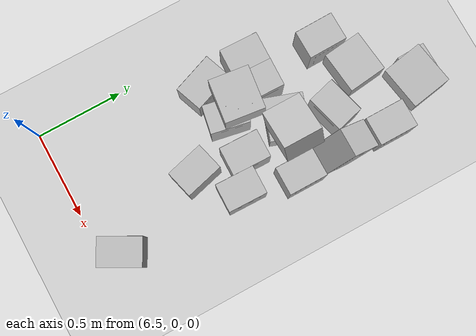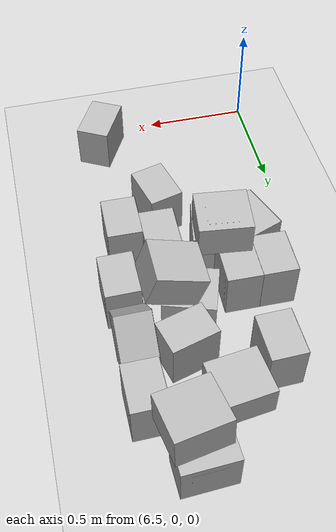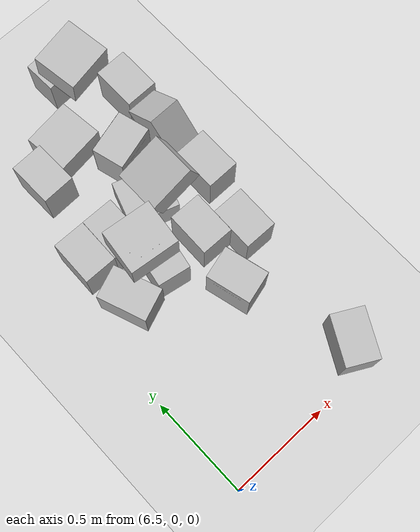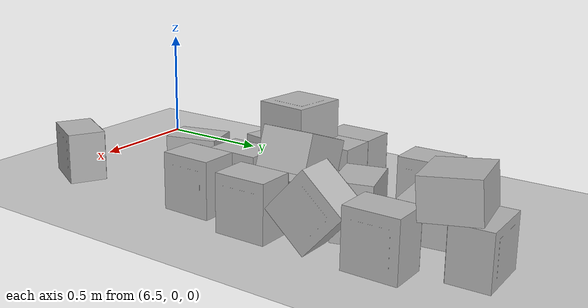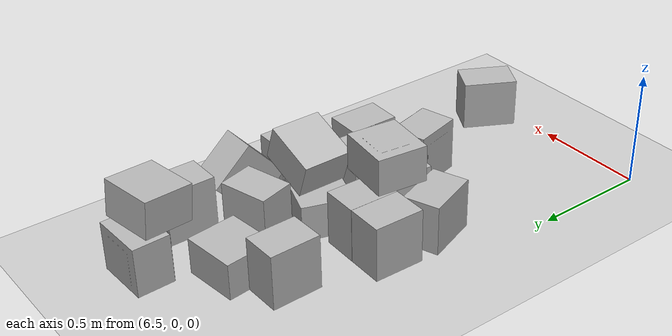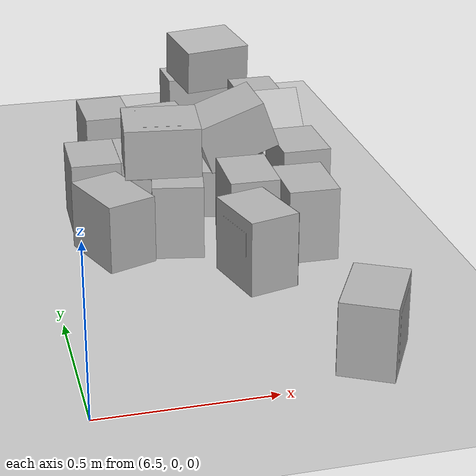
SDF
<sdf version="1.7">
 <world name="default">
  <model name="ground_plane">
   <static>1</static>
   <link name="link">
    <collision name="collision">
     <geometry><plane><normal>0 0 1</normal><size>100 100</size></plane></geometry>
     <surface><friction><ode><mu>100</mu><mu2>50</mu2></ode></friction></surface>
    </collision>
    <visual name="visual">
     <cast_shadows>0</cast_shadows>
     <geometry><plane><normal>0 0 1</normal><size>100 100</size></plane></geometry>
     <material>
      <script><uri>file://media/materials/scripts/gazebo.material</uri><name>Gazebo/Grey</name></script>
     </material>
    </visual>
   </link>
  </model>
  <model name="box">
   <link name="link">
    <inertial>
     <inertia>
      <ixx>0.00220983</ixx>
      <ixy>0</ixy>
      <ixz>0</ixz>
      <iyy>0.00128087</iyy>
      <iyz>0</iyz>
      <izz>0.00244903</izz>
     </inertia>
     <mass>0.01</mass>
    </inertial>
    <visual name="visual1">
     <cast_shadows>0</cast_shadows>
     <geometry><mesh><uri>model://box/meshes/box.dae</uri></mesh></geometry>
     <material>
      <shader type="pixel"><normal_map>__default__</normal_map></shader>
      <emissive>0 0 0 1</emissive>
     </material>
     <pose>0 0 -0.12 0 -0 0</pose>
    </visual>
    <collision name="collision_0">
     <geometry><box><size>0.16 0.22 0.24</size></box></geometry>
     <surface>
      <friction>
       <ode><mu>1</mu><mu2>1</mu2><fdir1>0 0 0</fdir1><slip1>0</slip1><slip2>0</slip2></ode>
       <torsional>
        <coefficient>1</coefficient>
        <patch_radius>0</patch_radius>
        <surface_radius>0</surface_radius>
        <use_patch_radius>1</use_patch_radius>
        <ode><slip>0</slip></ode>
       </torsional>
      </friction>
      <bounce><restitution_coefficient>0</restitution_coefficient><threshold>1e+06</threshold></bounce>
      <contact>
       <collide_without_contact>0</collide_without_contact>
       <collide_without_contact_bitmask>1</collide_without_contact_bitmask>
       <collide_bitmask>1</collide_bitmask>
       <ode>
        <soft_cfm>0</soft_cfm>
        <soft_erp>0.2</soft_erp>
        <kp>1e+13</kp>
        <kd>1</kd>
        <max_vel>0.01</max_vel>
        <min_depth>0</min_depth>
       </ode>
       <bullet>
        <split_impulse>1</split_impulse>
        <split_impulse_penetration_threshold>-0.01</split_impulse_penetration_threshold>
        <soft_cfm>0</soft_cfm>
        <soft_erp>0.2</soft_erp>
        <kp>1e+13</kp>
        <kd>1</kd>
       </bullet>
      </contact>
     </surface>
    </collision>
   </link>
   <static>0</static>
   <pose>6.6949 1.18742 0.119988 -1.3e-05 -4e-06 -0.023776</pose>
  </model>
  <model name="box_0">
   <link name="link">
    <inertial>
     <inertia>
      <ixx>0.00220983</ixx>
      <ixy>0</ixy>
      <ixz>0</ixz>
      <iyy>0.00128087</iyy>
      <iyz>0</iyz>
      <izz>0.00244903</izz>
     </inertia>
     <mass>0.01</mass>
    </inertial>
    <visual name="visual1">
     <cast_shadows>0</cast_shadows>
     <geometry><mesh><uri>model://box/meshes/box.dae</uri></mesh></geometry>
     <material>
      <shader type="pixel"><normal_map>__default__</normal_map></shader>
      <emissive>0 0 0 1</emissive>
     </material>
     <pose>0 0 -0.12 0 -0 0</pose>
    </visual>
    <collision name="collision_0">
     <geometry><box><size>0.16 0.22 0.24</size></box></geometry>
     <surface>
      <friction>
       <ode><mu>1</mu><mu2>1</mu2><fdir1>0 0 0</fdir1><slip1>0</slip1><slip2>0</slip2></ode>
       <torsional>
        <coefficient>1</coefficient>
        <patch_radius>0</patch_radius>
        <surface_radius>0</surface_radius>
        <use_patch_radius>1</use_patch_radius>
        <ode><slip>0</slip></ode>
       </torsional>
      </friction>
      <bounce><restitution_coefficient>0</restitution_coefficient><threshold>1e+06</threshold></bounce>
      <contact>
       <collide_without_contact>0</collide_without_contact>
       <collide_without_contact_bitmask>1</collide_without_contact_bitmask>
       <collide_bitmask>1</collide_bitmask>
       <ode>
        <soft_cfm>0</soft_cfm>
        <soft_erp>0.2</soft_erp>
        <kp>1e+13</kp>
        <kd>1</kd>
        <max_vel>0.01</max_vel>
        <min_depth>0</min_depth>
       </ode>
       <bullet>
        <split_impulse>1</split_impulse>
        <split_impulse_penetration_threshold>-0.01</split_impulse_penetration_threshold>
        <soft_cfm>0</soft_cfm>
        <soft_erp>0.2</soft_erp>
        <kp>1e+13</kp>
        <kd>1</kd>
       </bullet>
      </contact>
     </surface>
    </collision>
   </link>
   <static>0</static>
   <pose>7.1612 1.4756 0.12 0 0 -1.30545</pose>
  </model>
  <model name="box_1">
   <link name="link">
    <inertial>
     <inertia>
      <ixx>0.00220983</ixx>
      <ixy>0</ixy>
      <ixz>0</ixz>
      <iyy>0.00128087</iyy>
      <iyz>0</iyz>
      <izz>0.00244903</izz>
     </inertia>
     <mass>0.01</mass>
    </inertial>
    <visual name="visual1">
     <cast_shadows>0</cast_shadows>
     <geometry><mesh><uri>model://box/meshes/box.dae</uri></mesh></geometry>
     <material>
      <shader type="pixel"><normal_map>__default__</normal_map></shader>
      <emissive>0 0 0 1</emissive>
     </material>
     <pose>0 0 -0.12 0 -0 0</pose>
    </visual>
    <collision name="collision_0">
     <geometry><box><size>0.16 0.22 0.24</size></box></geometry>
     <surface>
      <friction>
       <ode><mu>1</mu><mu2>1</mu2><fdir1>0 0 0</fdir1><slip1>0</slip1><slip2>0</slip2></ode>
       <torsional>
        <coefficient>1</coefficient>
        <patch_radius>0</patch_radius>
        <surface_radius>0</surface_radius>
        <use_patch_radius>1</use_patch_radius>
        <ode><slip>0</slip></ode>
       </torsional>
      </friction>
      <bounce><restitution_coefficient>0</restitution_coefficient><threshold>1e+06</threshold></bounce>
      <contact>
       <collide_without_contact>0</collide_without_contact>
       <collide_without_contact_bitmask>1</collide_without_contact_bitmask>
       <collide_bitmask>1</collide_bitmask>
       <ode>
        <soft_cfm>0</soft_cfm>
        <soft_erp>0.2</soft_erp>
        <kp>1e+13</kp>
        <kd>1</kd>
        <max_vel>0.01</max_vel>
        <min_depth>0</min_depth>
       </ode>
       <bullet>
        <split_impulse>1</split_impulse>
        <split_impulse_penetration_threshold>-0.01</split_impulse_penetration_threshold>
        <soft_cfm>0</soft_cfm>
        <soft_erp>0.2</soft_erp>
        <kp>1e+13</kp>
        <kd>1</kd>
       </bullet>
      </contact>
     </surface>
    </collision>
   </link>
   <static>0</static>
   <pose>7.38401 1.68891 0.1183 -1.1e-05 -7e-05 0.00035</pose>
  </model>
  <model name="box_2">
   <link name="link">
    <inertial>
     <inertia>
      <ixx>0.00220983</ixx>
      <ixy>0</ixy>
      <ixz>0</ixz>
      <iyy>0.00128087</iyy>
      <iyz>0</iyz>
      <izz>0.00244903</izz>
     </inertia>
     <mass>0.01</mass>
    </inertial>
    <visual name="visual1">
     <cast_shadows>0</cast_shadows>
     <geometry><mesh><uri>model://box/meshes/box.dae</uri></mesh></geometry>
     <material>
      <shader type="pixel"><normal_map>__default__</normal_map></shader>
      <emissive>0 0 0 1</emissive>
     </material>
     <pose>0 0 -0.12 0 -0 0</pose>
    </visual>
    <collision name="collision_0">
     <geometry><box><size>0.16 0.22 0.24</size></box></geometry>
     <surface>
      <friction>
       <ode><mu>1</mu><mu2>1</mu2><fdir1>0 0 0</fdir1><slip1>0</slip1><slip2>0</slip2></ode>
       <torsional>
        <coefficient>1</coefficient>
        <patch_radius>0</patch_radius>
        <surface_radius>0</surface_radius>
        <use_patch_radius>1</use_patch_radius>
        <ode><slip>0</slip></ode>
       </torsional>
      </friction>
      <bounce><restitution_coefficient>0</restitution_coefficient><threshold>1e+06</threshold></bounce>
      <contact>
       <collide_without_contact>0</collide_without_contact>
       <collide_without_contact_bitmask>1</collide_without_contact_bitmask>
       <collide_bitmask>1</collide_bitmask>
       <ode>
        <soft_cfm>0</soft_cfm>
        <soft_erp>0.2</soft_erp>
        <kp>1e+13</kp>
        <kd>1</kd>
        <max_vel>0.01</max_vel>
        <min_depth>0</min_depth>
       </ode>
       <bullet>
        <split_impulse>1</split_impulse>
        <split_impulse_penetration_threshold>-0.01</split_impulse_penetration_threshold>
        <soft_cfm>0</soft_cfm>
        <soft_erp>0.2</soft_erp>
        <kp>1e+13</kp>
        <kd>1</kd>
       </bullet>
      </contact>
     </surface>
    </collision>
   </link>
   <static>0</static>
   <pose>6.99735 1.70085 0.08 2.78611 1.57079 2.90216</pose>
  </model>
  <model name="box_3">
   <link name="link">
    <inertial>
     <inertia>
      <ixx>0.00220983</ixx>
      <ixy>0</ixy>
      <ixz>0</ixz>
      <iyy>0.00128087</iyy>
      <iyz>0</iyz>
      <izz>0.00244903</izz>
     </inertia>
     <mass>0.01</mass>
    </inertial>
    <visual name="visual1">
     <cast_shadows>0</cast_shadows>
     <geometry><mesh><uri>model://box/meshes/box.dae</uri></mesh></geometry>
     <material>
      <shader type="pixel"><normal_map>__default__</normal_map></shader>
      <emissive>0 0 0 1</emissive>
     </material>
     <pose>0 0 -0.12 0 -0 0</pose>
    </visual>
    <collision name="collision_0">
     <geometry><box><size>0.16 0.22 0.24</size></box></geometry>
     <surface>
      <friction>
       <ode><mu>1</mu><mu2>1</mu2><fdir1>0 0 0</fdir1><slip1>0</slip1><slip2>0</slip2></ode>
       <torsional>
        <coefficient>1</coefficient>
        <patch_radius>0</patch_radius>
        <surface_radius>0</surface_radius>
        <use_patch_radius>1</use_patch_radius>
        <ode><slip>0</slip></ode>
       </torsional>
      </friction>
      <bounce><restitution_coefficient>0</restitution_coefficient><threshold>1e+06</threshold></bounce>
      <contact>
       <collide_without_contact>0</collide_without_contact>
       <collide_without_contact_bitmask>1</collide_without_contact_bitmask>
       <collide_bitmask>1</collide_bitmask>
       <ode>
        <soft_cfm>0</soft_cfm>
        <soft_erp>0.2</soft_erp>
        <kp>1e+13</kp>
        <kd>1</kd>
        <max_vel>0.01</max_vel>
        <min_depth>0</min_depth>
       </ode>
       <bullet>
        <split_impulse>1</split_impulse>
        <split_impulse_penetration_threshold>-0.01</split_impulse_penetration_threshold>
        <soft_cfm>0</soft_cfm>
        <soft_erp>0.2</soft_erp>
        <kp>1e+13</kp>
        <kd>1</kd>
       </bullet>
      </contact>
     </surface>
    </collision>
   </link>
   <static>0</static>
   <pose>7.16624 1.21663 0.27562 -0.000355 1.22733 -0.000252</pose>
  </model>
  <model name="box_5">
   <link name="link">
    <inertial>
     <inertia>
      <ixx>0.00220983</ixx>
      <ixy>0</ixy>
      <ixz>0</ixz>
      <iyy>0.00128087</iyy>
      <iyz>0</iyz>
      <izz>0.00244903</izz>
     </inertia>
     <mass>0.01</mass>
    </inertial>
    <visual name="visual1">
     <cast_shadows>0</cast_shadows>
     <geometry><mesh><uri>model://box/meshes/box.dae</uri></mesh></geometry>
     <material>
      <shader type="pixel"><normal_map>__default__</normal_map></shader>
      <emissive>0 0 0 1</emissive>
     </material>
     <pose>0 0 -0.12 0 -0 0</pose>
    </visual>
    <collision name="collision_0">
     <geometry><box><size>0.16 0.22 0.24</size></box></geometry>
     <surface>
      <friction>
       <ode><mu>1</mu><mu2>1</mu2><fdir1>0 0 0</fdir1><slip1>0</slip1><slip2>0</slip2></ode>
       <torsional>
        <coefficient>1</coefficient>
        <patch_radius>0</patch_radius>
        <surface_radius>0</surface_radius>
        <use_patch_radius>1</use_patch_radius>
        <ode><slip>0</slip></ode>
       </torsional>
      </friction>
      <bounce><restitution_coefficient>0</restitution_coefficient><threshold>1e+06</threshold></bounce>
      <contact>
       <collide_without_contact>0</collide_without_contact>
       <collide_without_contact_bitmask>1</collide_without_contact_bitmask>
       <collide_bitmask>1</collide_bitmask>
       <ode>
        <soft_cfm>0</soft_cfm>
        <soft_erp>0.2</soft_erp>
        <kp>1e+13</kp>
        <kd>1</kd>
        <max_vel>0.01</max_vel>
        <min_depth>0</min_depth>
       </ode>
       <bullet>
        <split_impulse>1</split_impulse>
        <split_impulse_penetration_threshold>-0.01</split_impulse_penetration_threshold>
        <soft_cfm>0</soft_cfm>
        <soft_erp>0.2</soft_erp>
        <kp>1e+13</kp>
        <kd>1</kd>
       </bullet>
      </contact>
     </surface>
    </collision>
   </link>
   <static>0</static>
   <pose>7.31334 0.826569 0.12 0 -0 -0.019346</pose>
  </model>
  <model name="box_8">
   <link name="link">
    <inertial>
     <inertia>
      <ixx>0.00220983</ixx>
      <ixy>0</ixy>
      <ixz>0</ixz>
      <iyy>0.00128087</iyy>
      <iyz>0</iyz>
      <izz>0.00244903</izz>
     </inertia>
     <mass>0.01</mass>
    </inertial>
    <visual name="visual1">
     <cast_shadows>0</cast_shadows>
     <geometry><mesh><uri>model://box/meshes/box.dae</uri></mesh></geometry>
     <material>
      <shader type="pixel"><normal_map>__default__</normal_map></shader>
      <emissive>0 0 0 1</emissive>
     </material>
     <pose>0 0 -0.12 0 -0 0</pose>
    </visual>
    <collision name="collision_0">
     <geometry><box><size>0.16 0.22 0.24</size></box></geometry>
     <surface>
      <friction>
       <ode><mu>1</mu><mu2>1</mu2><fdir1>0 0 0</fdir1><slip1>0</slip1><slip2>0</slip2></ode>
       <torsional>
        <coefficient>1</coefficient>
        <patch_radius>0</patch_radius>
        <surface_radius>0</surface_radius>
        <use_patch_radius>1</use_patch_radius>
        <ode><slip>0</slip></ode>
       </torsional>
      </friction>
      <bounce><restitution_coefficient>0</restitution_coefficient><threshold>1e+06</threshold></bounce>
      <contact>
       <collide_without_contact>0</collide_without_contact>
       <collide_without_contact_bitmask>1</collide_without_contact_bitmask>
       <collide_bitmask>1</collide_bitmask>
       <ode>
        <soft_cfm>0</soft_cfm>
        <soft_erp>0.2</soft_erp>
        <kp>1e+13</kp>
        <kd>1</kd>
        <max_vel>0.01</max_vel>
        <min_depth>0</min_depth>
       </ode>
       <bullet>
        <split_impulse>1</split_impulse>
        <split_impulse_penetration_threshold>-0.01</split_impulse_penetration_threshold>
        <soft_cfm>0</soft_cfm>
        <soft_erp>0.2</soft_erp>
        <kp>1e+13</kp>
        <kd>1</kd>
       </bullet>
      </contact>
     </surface>
    </collision>
   </link>
   <static>0</static>
   <pose>6.89395 1.03089 0.319892 1.472 -1.56933 -1.59269</pose>
  </model>
  <model name="box_9">
   <link name="link">
    <inertial>
     <inertia>
      <ixx>0.00220983</ixx>
      <ixy>0</ixy>
      <ixz>0</ixz>
      <iyy>0.00128087</iyy>
      <iyz>0</iyz>
      <izz>0.00244903</izz>
     </inertia>
     <mass>0.01</mass>
    </inertial>
    <visual name="visual1">
     <cast_shadows>0</cast_shadows>
     <geometry><mesh><uri>model://box/meshes/box.dae</uri></mesh></geometry>
     <material>
      <shader type="pixel"><normal_map>__default__</normal_map></shader>
      <emissive>0 0 0 1</emissive>
     </material>
     <pose>0 0 -0.12 0 -0 0</pose>
    </visual>
    <collision name="collision_0">
     <geometry><box><size>0.16 0.22 0.24</size></box></geometry>
     <surface>
      <friction>
       <ode><mu>1</mu><mu2>1</mu2><fdir1>0 0 0</fdir1><slip1>0</slip1><slip2>0</slip2></ode>
       <torsional>
        <coefficient>1</coefficient>
        <patch_radius>0</patch_radius>
        <surface_radius>0</surface_radius>
        <use_patch_radius>1</use_patch_radius>
        <ode><slip>0</slip></ode>
       </torsional>
      </friction>
      <bounce><restitution_coefficient>0</restitution_coefficient><threshold>1e+06</threshold></bounce>
      <contact>
       <collide_without_contact>0</collide_without_contact>
       <collide_without_contact_bitmask>1</collide_without_contact_bitmask>
       <collide_bitmask>1</collide_bitmask>
       <ode>
        <soft_cfm>0</soft_cfm>
        <soft_erp>0.2</soft_erp>
        <kp>1e+13</kp>
        <kd>1</kd>
        <max_vel>0.01</max_vel>
        <min_depth>0</min_depth>
       </ode>
       <bullet>
        <split_impulse>1</split_impulse>
        <split_impulse_penetration_threshold>-0.01</split_impulse_penetration_threshold>
        <soft_cfm>0</soft_cfm>
        <soft_erp>0.2</soft_erp>
        <kp>1e+13</kp>
        <kd>1</kd>
       </bullet>
      </contact>
     </surface>
    </collision>
   </link>
   <static>0</static>
   <pose>7.15536 0.936115 0.119991 0 -0 -0.021545</pose>
  </model>
  <model name="box_11">
   <link name="link">
    <inertial>
     <inertia>
      <ixx>0.00220983</ixx>
      <ixy>0</ixy>
      <ixz>0</ixz>
      <iyy>0.00128087</iyy>
      <iyz>0</iyz>
      <izz>0.00244903</izz>
     </inertia>
     <mass>0.01</mass>
    </inertial>
    <visual name="visual1">
     <cast_shadows>0</cast_shadows>
     <geometry><mesh><uri>model://box/meshes/box.dae</uri></mesh></geometry>
     <material>
      <shader type="pixel"><normal_map>__default__</normal_map></shader>
      <emissive>0 0 0 1</emissive>
     </material>
     <pose>0 0 -0.12 0 -0 0</pose>
    </visual>
    <collision name="collision_0">
     <geometry><box><size>0.16 0.22 0.24</size></box></geometry>
     <surface>
      <friction>
       <ode><mu>1</mu><mu2>1</mu2><fdir1>0 0 0</fdir1><slip1>0</slip1><slip2>0</slip2></ode>
       <torsional>
        <coefficient>1</coefficient>
        <patch_radius>0</patch_radius>
        <surface_radius>0</surface_radius>
        <use_patch_radius>1</use_patch_radius>
        <ode><slip>0</slip></ode>
       </torsional>
      </friction>
      <bounce><restitution_coefficient>0</restitution_coefficient><threshold>1e+06</threshold></bounce>
      <contact>
       <collide_without_contact>0</collide_without_contact>
       <collide_without_contact_bitmask>1</collide_without_contact_bitmask>
       <collide_bitmask>1</collide_bitmask>
       <ode>
        <soft_cfm>0</soft_cfm>
        <soft_erp>0.2</soft_erp>
        <kp>1e+13</kp>
        <kd>1</kd>
        <max_vel>0.01</max_vel>
        <min_depth>0</min_depth>
       </ode>
       <bullet>
        <split_impulse>1</split_impulse>
        <split_impulse_penetration_threshold>-0.01</split_impulse_penetration_threshold>
        <soft_cfm>0</soft_cfm>
        <soft_erp>0.2</soft_erp>
        <kp>1e+13</kp>
        <kd>1</kd>
       </bullet>
      </contact>
     </surface>
    </collision>
   </link>
   <static>0</static>
   <pose>7.37516 1.41711 0.162753 -0.725454 2.5e-05 6.9e-05</pose>
  </model>
  <model name="box_13">
   <link name="link">
    <inertial>
     <inertia>
      <ixx>0.00220983</ixx>
      <ixy>0</ixy>
      <ixz>0</ixz>
      <iyy>0.00128087</iyy>
      <iyz>0</iyz>
      <izz>0.00244903</izz>
     </inertia>
     <mass>0.01</mass>
    </inertial>
    <visual name="visual1">
     <cast_shadows>0</cast_shadows>
     <geometry><mesh><uri>model://box/meshes/box.dae</uri></mesh></geometry>
     <material>
      <shader type="pixel"><normal_map>__default__</normal_map></shader>
      <emissive>0 0 0 1</emissive>
     </material>
     <pose>0 0 -0.12 0 -0 0</pose>
    </visual>
    <collision name="collision_0">
     <geometry><box><size>0.16 0.22 0.24</size></box></geometry>
     <surface>
      <friction>
       <ode><mu>1</mu><mu2>1</mu2><fdir1>0 0 0</fdir1><slip1>0</slip1><slip2>0</slip2></ode>
       <torsional>
        <coefficient>1</coefficient>
        <patch_radius>0</patch_radius>
        <surface_radius>0</surface_radius>
        <use_patch_radius>1</use_patch_radius>
        <ode><slip>0</slip></ode>
       </torsional>
      </friction>
      <bounce><restitution_coefficient>0</restitution_coefficient><threshold>1e+06</threshold></bounce>
      <contact>
       <collide_without_contact>0</collide_without_contact>
       <collide_without_contact_bitmask>1</collide_without_contact_bitmask>
       <collide_bitmask>1</collide_bitmask>
       <ode>
        <soft_cfm>0</soft_cfm>
        <soft_erp>0.2</soft_erp>
        <kp>1e+13</kp>
        <kd>1</kd>
        <max_vel>0.01</max_vel>
        <min_depth>0</min_depth>
       </ode>
       <bullet>
        <split_impulse>1</split_impulse>
        <split_impulse_penetration_threshold>-0.01</split_impulse_penetration_threshold>
        <soft_cfm>0</soft_cfm>
        <soft_erp>0.2</soft_erp>
        <kp>1e+13</kp>
        <kd>1</kd>
       </bullet>
      </contact>
     </surface>
    </collision>
   </link>
   <static>0</static>
   <pose>7.1118 0.659513 0.119999 3.14159 5e-06 -2.88678</pose>
  </model>
  <model name="box_15">
   <link name="link">
    <inertial>
     <inertia>
      <ixx>0.00220983</ixx>
      <ixy>0</ixy>
      <ixz>0</ixz>
      <iyy>0.00128087</iyy>
      <iyz>0</iyz>
      <izz>0.00244903</izz>
     </inertia>
     <mass>0.01</mass>
    </inertial>
    <visual name="visual1">
     <cast_shadows>0</cast_shadows>
     <geometry><mesh><uri>model://box/meshes/box.dae</uri></mesh></geometry>
     <material>
      <shader type="pixel"><normal_map>__default__</normal_map></shader>
      <emissive>0 0 0 1</emissive>
     </material>
     <pose>0 0 -0.12 0 -0 0</pose>
    </visual>
    <collision name="collision_0">
     <geometry><box><size>0.16 0.22 0.24</size></box></geometry>
     <surface>
      <friction>
       <ode><mu>1</mu><mu2>1</mu2><fdir1>0 0 0</fdir1><slip1>0</slip1><slip2>0</slip2></ode>
       <torsional>
        <coefficient>1</coefficient>
        <patch_radius>0</patch_radius>
        <surface_radius>0</surface_radius>
        <use_patch_radius>1</use_patch_radius>
        <ode><slip>0</slip></ode>
       </torsional>
      </friction>
      <bounce><restitution_coefficient>0</restitution_coefficient><threshold>1e+06</threshold></bounce>
      <contact>
       <collide_without_contact>0</collide_without_contact>
       <collide_without_contact_bitmask>1</collide_without_contact_bitmask>
       <collide_bitmask>1</collide_bitmask>
       <ode>
        <soft_cfm>0</soft_cfm>
        <soft_erp>0.2</soft_erp>
        <kp>1e+13</kp>
        <kd>1</kd>
        <max_vel>0.01</max_vel>
        <min_depth>0</min_depth>
       </ode>
       <bullet>
        <split_impulse>1</split_impulse>
        <split_impulse_penetration_threshold>-0.01</split_impulse_penetration_threshold>
        <soft_cfm>0</soft_cfm>
        <soft_erp>0.2</soft_erp>
        <kp>1e+13</kp>
        <kd>1</kd>
       </bullet>
      </contact>
     </surface>
    </collision>
   </link>
   <static>0</static>
   <pose>7.21538 1.98139 0.104415 1.5713 -0.00122 1.60609</pose>
  </model>
  <model name="box_19">
   <link name="link">
    <inertial>
     <inertia>
      <ixx>0.00220983</ixx>
      <ixy>0</ixy>
      <ixz>0</ixz>
      <iyy>0.00128087</iyy>
      <iyz>0</iyz>
      <izz>0.00244903</izz>
     </inertia>
     <mass>0.01</mass>
    </inertial>
    <visual name="visual1">
     <cast_shadows>0</cast_shadows>
     <geometry><mesh><uri>model://box/meshes/box.dae</uri></mesh></geometry>
     <material>
      <shader type="pixel"><normal_map>__default__</normal_map></shader>
      <emissive>0 0 0 1</emissive>
     </material>
     <pose>0 0 -0.12 0 -0 0</pose>
    </visual>
    <collision name="collision_0">
     <geometry><box><size>0.16 0.22 0.24</size></box></geometry>
     <surface>
      <friction>
       <ode><mu>1</mu><mu2>1</mu2><fdir1>0 0 0</fdir1><slip1>0</slip1><slip2>0</slip2></ode>
       <torsional>
        <coefficient>1</coefficient>
        <patch_radius>0</patch_radius>
        <surface_radius>0</surface_radius>
        <use_patch_radius>1</use_patch_radius>
        <ode><slip>0</slip></ode>
       </torsional>
      </friction>
      <bounce><restitution_coefficient>0</restitution_coefficient><threshold>1e+06</threshold></bounce>
      <contact>
       <collide_without_contact>0</collide_without_contact>
       <collide_without_contact_bitmask>1</collide_without_contact_bitmask>
       <collide_bitmask>1</collide_bitmask>
       <ode>
        <soft_cfm>0</soft_cfm>
        <soft_erp>0.2</soft_erp>
        <kp>1e+13</kp>
        <kd>1</kd>
        <max_vel>0.01</max_vel>
        <min_depth>0</min_depth>
       </ode>
       <bullet>
        <split_impulse>1</split_impulse>
        <split_impulse_penetration_threshold>-0.01</split_impulse_penetration_threshold>
        <soft_cfm>0</soft_cfm>
        <soft_erp>0.2</soft_erp>
        <kp>1e+13</kp>
        <kd>1</kd>
       </bullet>
      </contact>
     </surface>
    </collision>
   </link>
   <static>0</static>
   <pose>7.0835 1.22933 0.079855 1.86663 1.57076 1.54105</pose>
  </model>
  <model name="box_22">
   <link name="link">
    <inertial>
     <inertia>
      <ixx>0.00220983</ixx>
      <ixy>0</ixy>
      <ixz>0</ixz>
      <iyy>0.00128087</iyy>
      <iyz>0</iyz>
      <izz>0.00244903</izz>
     </inertia>
     <mass>0.01</mass>
    </inertial>
    <visual name="visual1">
     <cast_shadows>0</cast_shadows>
     <geometry><mesh><uri>model://box/meshes/box.dae</uri></mesh></geometry>
     <material>
      <shader type="pixel"><normal_map>__default__</normal_map></shader>
      <emissive>0 0 0 1</emissive>
     </material>
     <pose>0 0 -0.12 0 -0 0</pose>
    </visual>
    <collision name="collision_0">
     <geometry><box><size>0.16 0.22 0.24</size></box></geometry>
     <surface>
      <friction>
       <ode><mu>1</mu><mu2>1</mu2><fdir1>0 0 0</fdir1><slip1>0</slip1><slip2>0</slip2></ode>
       <torsional>
        <coefficient>1</coefficient>
        <patch_radius>0</patch_radius>
        <surface_radius>0</surface_radius>
        <use_patch_radius>1</use_patch_radius>
        <ode><slip>0</slip></ode>
       </torsional>
      </friction>
      <bounce><restitution_coefficient>0</restitution_coefficient><threshold>1e+06</threshold></bounce>
      <contact>
       <collide_without_contact>0</collide_without_contact>
       <collide_without_contact_bitmask>1</collide_without_contact_bitmask>
       <collide_bitmask>1</collide_bitmask>
       <ode>
        <soft_cfm>0</soft_cfm>
        <soft_erp>0.2</soft_erp>
        <kp>1e+13</kp>
        <kd>1</kd>
        <max_vel>0.01</max_vel>
        <min_depth>0</min_depth>
       </ode>
       <bullet>
        <split_impulse>1</split_impulse>
        <split_impulse_penetration_threshold>-0.01</split_impulse_penetration_threshold>
        <soft_cfm>0</soft_cfm>
        <soft_erp>0.2</soft_erp>
        <kp>1e+13</kp>
        <kd>1</kd>
       </bullet>
      </contact>
     </surface>
    </collision>
   </link>
   <static>0</static>
   <pose>6.85511 1.18387 0.12 2e-06 1e-06 -0.026102</pose>
  </model>
  <model name="box_23">
   <link name="link">
    <inertial>
     <inertia>
      <ixx>0.00220983</ixx>
      <ixy>0</ixy>
      <ixz>0</ixz>
      <iyy>0.00128087</iyy>
      <iyz>0</iyz>
      <izz>0.00244903</izz>
     </inertia>
     <mass>0.01</mass>
    </inertial>
    <visual name="visual1">
     <cast_shadows>0</cast_shadows>
     <geometry><mesh><uri>model://box/meshes/box.dae</uri></mesh></geometry>
     <material>
      <shader type="pixel"><normal_map>__default__</normal_map></shader>
      <emissive>0 0 0 1</emissive>
     </material>
     <pose>0 0 -0.12 0 -0 0</pose>
    </visual>
    <collision name="collision_0">
     <geometry><box><size>0.16 0.22 0.24</size></box></geometry>
     <surface>
      <friction>
       <ode><mu>1</mu><mu2>1</mu2><fdir1>0 0 0</fdir1><slip1>0</slip1><slip2>0</slip2></ode>
       <torsional>
        <coefficient>1</coefficient>
        <patch_radius>0</patch_radius>
        <surface_radius>0</surface_radius>
        <use_patch_radius>1</use_patch_radius>
        <ode><slip>0</slip></ode>
       </torsional>
      </friction>
      <bounce><restitution_coefficient>0</restitution_coefficient><threshold>1e+06</threshold></bounce>
      <contact>
       <collide_without_contact>0</collide_without_contact>
       <collide_without_contact_bitmask>1</collide_without_contact_bitmask>
       <collide_bitmask>1</collide_bitmask>
       <ode>
        <soft_cfm>0</soft_cfm>
        <soft_erp>0.2</soft_erp>
        <kp>1e+13</kp>
        <kd>1</kd>
        <max_vel>0.01</max_vel>
        <min_depth>0</min_depth>
       </ode>
       <bullet>
        <split_impulse>1</split_impulse>
        <split_impulse_penetration_threshold>-0.01</split_impulse_penetration_threshold>
        <soft_cfm>0</soft_cfm>
        <soft_erp>0.2</soft_erp>
        <kp>1e+13</kp>
        <kd>1</kd>
       </bullet>
      </contact>
     </surface>
    </collision>
   </link>
   <static>0</static>
   <pose>6.92849 0.947767 0.11963 3.4e-05 -8.2e-05 -0.186006</pose>
  </model>
  <model name="box_24">
   <link name="link">
    <inertial>
     <inertia>
      <ixx>0.00220983</ixx>
      <ixy>0</ixy>
      <ixz>0</ixz>
      <iyy>0.00128087</iyy>
      <iyz>0</iyz>
      <izz>0.00244903</izz>
     </inertia>
     <mass>0.01</mass>
    </inertial>
    <visual name="visual1">
     <cast_shadows>0</cast_shadows>
     <geometry><mesh><uri>model://box/meshes/box.dae</uri></mesh></geometry>
     <material>
      <shader type="pixel"><normal_map>__default__</normal_map></shader>
      <emissive>0 0 0 1</emissive>
     </material>
     <pose>0 0 -0.12 0 -0 0</pose>
    </visual>
    <collision name="collision_0">
     <geometry><box><size>0.16 0.22 0.24</size></box></geometry>
     <surface>
      <friction>
       <ode><mu>1</mu><mu2>1</mu2><fdir1>0 0 0</fdir1><slip1>0</slip1><slip2>0</slip2></ode>
       <torsional>
        <coefficient>1</coefficient>
        <patch_radius>0</patch_radius>
        <surface_radius>0</surface_radius>
        <use_patch_radius>1</use_patch_radius>
        <ode><slip>0</slip></ode>
       </torsional>
      </friction>
      <bounce><restitution_coefficient>0</restitution_coefficient><threshold>1e+06</threshold></bounce>
      <contact>
       <collide_without_contact>0</collide_without_contact>
       <collide_without_contact_bitmask>1</collide_without_contact_bitmask>
       <collide_bitmask>1</collide_bitmask>
       <ode>
        <soft_cfm>0</soft_cfm>
        <soft_erp>0.2</soft_erp>
        <kp>1e+13</kp>
        <kd>1</kd>
        <max_vel>0.01</max_vel>
        <min_depth>0</min_depth>
       </ode>
       <bullet>
        <split_impulse>1</split_impulse>
        <split_impulse_penetration_threshold>-0.01</split_impulse_penetration_threshold>
        <soft_cfm>0</soft_cfm>
        <soft_erp>0.2</soft_erp>
        <kp>1e+13</kp>
        <kd>1</kd>
       </bullet>
      </contact>
     </surface>
    </collision>
   </link>
   <static>0</static>
   <pose>6.79798 1.59372 0.119971 0 -0 0.017552</pose>
  </model>
  <model name="box_25">
   <link name="link">
    <inertial>
     <inertia>
      <ixx>0.00220983</ixx>
      <ixy>0</ixy>
      <ixz>0</ixz>
      <iyy>0.00128087</iyy>
      <iyz>0</iyz>
      <izz>0.00244903</izz>
     </inertia>
     <mass>0.01</mass>
    </inertial>
    <visual name="visual1">
     <cast_shadows>0</cast_shadows>
     <geometry><mesh><uri>model://box/meshes/box.dae</uri></mesh></geometry>
     <material>
      <shader type="pixel"><normal_map>__default__</normal_map></shader>
      <emissive>0 0 0 1</emissive>
     </material>
     <pose>0 0 -0.12 0 -0 0</pose>
    </visual>
    <collision name="collision_0">
     <geometry><box><size>0.16 0.22 0.24</size></box></geometry>
     <surface>
      <friction>
       <ode><mu>1</mu><mu2>1</mu2><fdir1>0 0 0</fdir1><slip1>0</slip1><slip2>0</slip2></ode>
       <torsional>
        <coefficient>1</coefficient>
        <patch_radius>0</patch_radius>
        <surface_radius>0</surface_radius>
        <use_patch_radius>1</use_patch_radius>
        <ode><slip>0</slip></ode>
       </torsional>
      </friction>
      <bounce><restitution_coefficient>0</restitution_coefficient><threshold>1e+06</threshold></bounce>
      <contact>
       <collide_without_contact>0</collide_without_contact>
       <collide_without_contact_bitmask>1</collide_without_contact_bitmask>
       <collide_bitmask>1</collide_bitmask>
       <ode>
        <soft_cfm>0</soft_cfm>
        <soft_erp>0.2</soft_erp>
        <kp>1e+13</kp>
        <kd>1</kd>
        <max_vel>0.01</max_vel>
        <min_depth>0</min_depth>
       </ode>
       <bullet>
        <split_impulse>1</split_impulse>
        <split_impulse_penetration_threshold>-0.01</split_impulse_penetration_threshold>
        <soft_cfm>0</soft_cfm>
        <soft_erp>0.2</soft_erp>
        <kp>1e+13</kp>
        <kd>1</kd>
       </bullet>
      </contact>
     </surface>
    </collision>
   </link>
   <static>0</static>
   <pose>7.24473 1.89561 0.294032 1.4418 1.47874 1.61149</pose>
  </model>
  <model name="box_26">
   <link name="link">
    <inertial>
     <inertia>
      <ixx>0.00220983</ixx>
      <ixy>0</ixy>
      <ixz>0</ixz>
      <iyy>0.00128087</iyy>
      <iyz>0</iyz>
      <izz>0.00244903</izz>
     </inertia>
     <mass>0.01</mass>
    </inertial>
    <visual name="visual1">
     <cast_shadows>0</cast_shadows>
     <geometry><mesh><uri>model://box/meshes/box.dae</uri></mesh></geometry>
     <material>
      <shader type="pixel"><normal_map>__default__</normal_map></shader>
      <emissive>0 0 0 1</emissive>
     </material>
     <pose>0 0 -0.12 0 -0 0</pose>
    </visual>
    <collision name="collision_0">
     <geometry><box><size>0.16 0.22 0.24</size></box></geometry>
     <surface>
      <friction>
       <ode><mu>1</mu><mu2>1</mu2><fdir1>0 0 0</fdir1><slip1>0</slip1><slip2>0</slip2></ode>
       <torsional>
        <coefficient>1</coefficient>
        <patch_radius>0</patch_radius>
        <surface_radius>0</surface_radius>
        <use_patch_radius>1</use_patch_radius>
        <ode><slip>0</slip></ode>
       </torsional>
      </friction>
      <bounce><restitution_coefficient>0</restitution_coefficient><threshold>1e+06</threshold></bounce>
      <contact>
       <collide_without_contact>0</collide_without_contact>
       <collide_without_contact_bitmask>1</collide_without_contact_bitmask>
       <collide_bitmask>1</collide_bitmask>
       <ode>
        <soft_cfm>0</soft_cfm>
        <soft_erp>0.2</soft_erp>
        <kp>1e+13</kp>
        <kd>1</kd>
        <max_vel>0.01</max_vel>
        <min_depth>0</min_depth>
       </ode>
       <bullet>
        <split_impulse>1</split_impulse>
        <split_impulse_penetration_threshold>-0.01</split_impulse_penetration_threshold>
        <soft_cfm>0</soft_cfm>
        <soft_erp>0.2</soft_erp>
        <kp>1e+13</kp>
        <kd>1</kd>
       </bullet>
      </contact>
     </surface>
    </collision>
   </link>
   <static>0</static>
   <pose>7.38416 1.14525 0.11999 -1e-06 -2.2e-05 -1e-06</pose>
  </model>
  <model name="box_27">
   <link name="link">
    <inertial>
     <inertia>
      <ixx>0.00220983</ixx>
      <ixy>0</ixy>
      <ixz>0</ixz>
      <iyy>0.00128087</iyy>
      <iyz>0</iyz>
      <izz>0.00244903</izz>
     </inertia>
     <mass>0.01</mass>
    </inertial>
    <visual name="visual1">
     <cast_shadows>0</cast_shadows>
     <geometry><mesh><uri>model://box/meshes/box.dae</uri></mesh></geometry>
     <material>
      <shader type="pixel"><normal_map>__default__</normal_map></shader>
      <emissive>0 0 0 1</emissive>
     </material>
     <pose>0 0 -0.12 0 -0 0</pose>
    </visual>
    <collision name="collision_0">
     <geometry><box><size>0.16 0.22 0.24</size></box></geometry>
     <surface>
      <friction>
       <ode><mu>1</mu><mu2>1</mu2><fdir1>0 0 0</fdir1><slip1>0</slip1><slip2>0</slip2></ode>
       <torsional>
        <coefficient>1</coefficient>
        <patch_radius>0</patch_radius>
        <surface_radius>0</surface_radius>
        <use_patch_radius>1</use_patch_radius>
        <ode><slip>0</slip></ode>
       </torsional>
      </friction>
      <bounce><restitution_coefficient>0</restitution_coefficient><threshold>1e+06</threshold></bounce>
      <contact>
       <collide_without_contact>0</collide_without_contact>
       <collide_without_contact_bitmask>1</collide_without_contact_bitmask>
       <collide_bitmask>1</collide_bitmask>
       <ode>
        <soft_cfm>0</soft_cfm>
        <soft_erp>0.2</soft_erp>
        <kp>1e+13</kp>
        <kd>1</kd>
        <max_vel>0.01</max_vel>
        <min_depth>0</min_depth>
       </ode>
       <bullet>
        <split_impulse>1</split_impulse>
        <split_impulse_penetration_threshold>-0.01</split_impulse_penetration_threshold>
        <soft_cfm>0</soft_cfm>
        <soft_erp>0.2</soft_erp>
        <kp>1e+13</kp>
        <kd>1</kd>
       </bullet>
      </contact>
     </surface>
    </collision>
   </link>
   <static>0</static>
   <pose>7.29516 0.122017 0.109999 1.57079 1e-06 -0.496505</pose>
  </model>
  <model name="box_28">
   <link name="link">
    <inertial>
     <inertia>
      <ixx>0.00220983</ixx>
      <ixy>0</ixy>
      <ixz>0</ixz>
      <iyy>0.00128087</iyy>
      <iyz>0</iyz>
      <izz>0.00244903</izz>
     </inertia>
     <mass>0.01</mass>
    </inertial>
    <visual name="visual1">
     <cast_shadows>0</cast_shadows>
     <geometry><mesh><uri>model://box/meshes/box.dae</uri></mesh></geometry>
     <material>
      <shader type="pixel"><normal_map>__default__</normal_map></shader>
      <emissive>0 0 0 1</emissive>
     </material>
     <pose>0 0 -0.12 0 -0 0</pose>
    </visual>
    <collision name="collision_0">
     <geometry><box><size>0.16 0.22 0.24</size></box></geometry>
     <surface>
      <friction>
       <ode><mu>1</mu><mu2>1</mu2><fdir1>0 0 0</fdir1><slip1>0</slip1><slip2>0</slip2></ode>
       <torsional>
        <coefficient>1</coefficient>
        <patch_radius>0</patch_radius>
        <surface_radius>0</surface_radius>
        <use_patch_radius>1</use_patch_radius>
        <ode><slip>0</slip></ode>
       </torsional>
      </friction>
      <bounce><restitution_coefficient>0</restitution_coefficient><threshold>1e+06</threshold></bounce>
      <contact>
       <collide_without_contact>0</collide_without_contact>
       <collide_without_contact_bitmask>1</collide_without_contact_bitmask>
       <collide_bitmask>1</collide_bitmask>
       <ode>
        <soft_cfm>0</soft_cfm>
        <soft_erp>0.2</soft_erp>
        <kp>1e+13</kp>
        <kd>1</kd>
        <max_vel>0.01</max_vel>
        <min_depth>0</min_depth>
       </ode>
       <bullet>
        <split_impulse>1</split_impulse>
        <split_impulse_penetration_threshold>-0.01</split_impulse_penetration_threshold>
        <soft_cfm>0</soft_cfm>
        <soft_erp>0.2</soft_erp>
        <kp>1e+13</kp>
        <kd>1</kd>
       </bullet>
      </contact>
     </surface>
    </collision>
   </link>
   <static>0</static>
   <pose>6.7183 0.922637 0.11 1.5708 -0 0.355344</pose>
  </model>
 </world>
</sdf>
